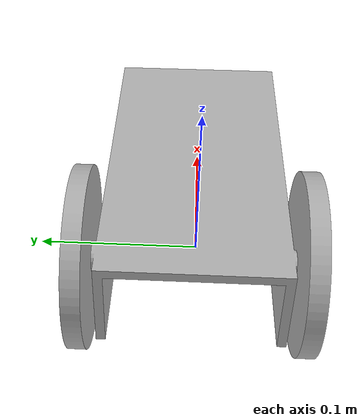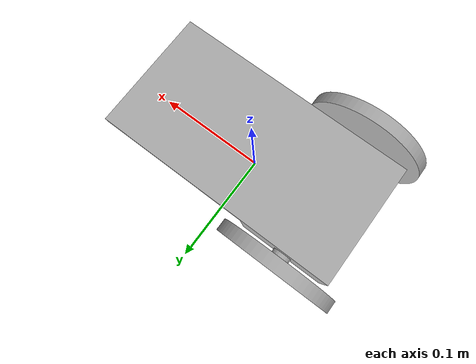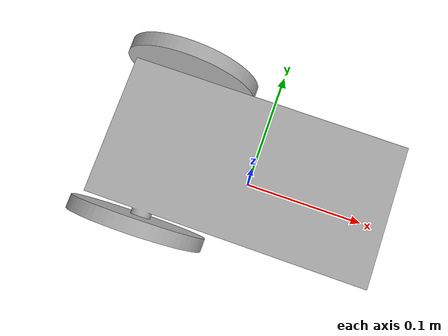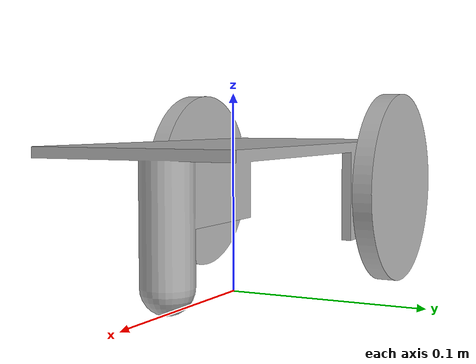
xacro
<?xml version="1.0" ?>
<robot name="nannanananan" xmlns:xacro="http://www.ros.org/wiki/xacro">

<xacro:include filename="$(find nannanananan_description)/urdf/materials.xacro" />
<xacro:include filename="$(find nannanananan_description)/urdf/nannanananan.trans" />
<xacro:include filename="$(find nannanananan_description)/urdf/nannanananan.gazebo" />
<link name="base_link">
  <inertial>
    <origin xyz="-0.0013982302040001131 0.015379758904105754 0.06641919349562576" rpy="0 0 0"/>
    <mass value="1.317489111222947"/>
    <inertia ixx="0.001739" iyy="0.005522" izz="0.006384" ixy="0.0" iyz="0.0" ixz="0.000193"/>
  </inertial>
  <visual>
    <origin xyz="0 0 0" rpy="0 0 0"/>
    <geometry>
      <mesh filename="package://nannanananan_description/meshes/base_link.stl" scale="0.001 0.001 0.001"/>
    </geometry>
    <material name="silver"/>
  </visual>
  <collision>
    <origin xyz="0 0 0" rpy="0 0 0"/>
    <geometry>
      <mesh filename="package://nannanananan_description/meshes/base_link.stl" scale="0.001 0.001 0.001"/>
    </geometry>
  </collision>
</link>

<link name="whell_2_1">
  <inertial>
    <origin xyz="3.340457739031688e-07 0.004999758904105908 8.432927334905971e-08" rpy="0 0 0"/>
    <mass value="0.6165375582669965"/>
    <inertia ixx="0.00039" iyy="0.000771" izz="0.00039" ixy="-0.0" iyz="-0.0" ixz="-0.0"/>
  </inertial>
  <visual>
    <origin xyz="0.064858 -0.07038 -0.056191" rpy="0 0 0"/>
    <geometry>
      <mesh filename="package://nannanananan_description/meshes/whell_2_1.stl" scale="0.001 0.001 0.001"/>
    </geometry>
    <material name="silver"/>
  </visual>
  <collision>
    <origin xyz="0.064858 -0.07038 -0.056191" rpy="0 0 0"/>
    <geometry>
      <mesh filename="package://nannanananan_description/meshes/whell_2_1.stl" scale="0.001 0.001 0.001"/>
    </geometry>
  </collision>
</link>

<link name="whell_1">
  <inertial>
    <origin xyz="3.340457746803249e-07 -0.005000241095894663 8.432927341844865e-08" rpy="0 0 0"/>
    <mass value="0.6165375582669967"/>
    <inertia ixx="0.00039" iyy="0.000771" izz="0.00039" ixy="-0.0" iyz="0.0" ixz="-0.0"/>
  </inertial>
  <visual>
    <origin xyz="0.064858 0.03962 -0.056191" rpy="0 0 0"/>
    <geometry>
      <mesh filename="package://nannanananan_description/meshes/whell_1.stl" scale="0.001 0.001 0.001"/>
    </geometry>
    <material name="silver"/>
  </visual>
  <collision>
    <origin xyz="0.064858 0.03962 -0.056191" rpy="0 0 0"/>
    <geometry>
      <mesh filename="package://nannanananan_description/meshes/whell_1.stl" scale="0.001 0.001 0.001"/>
    </geometry>
  </collision>
</link>

<joint name="Rev1" type="continuous">
  <origin xyz="-0.064858 0.07038 0.056191" rpy="0 0 0"/>
  <parent link="base_link"/>
  <child link="whell_2_1"/>
  <axis xyz="0.0 1.0 0.0"/>
</joint>

<joint name="Rev2" type="continuous">
  <origin xyz="-0.064858 -0.03962 0.056191" rpy="0 0 0"/>
  <parent link="base_link"/>
  <child link="whell_1"/>
  <axis xyz="0.0 1.0 0.0"/>
</joint>

</robot>

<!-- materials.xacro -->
<robot name="nannanananan" xmlns:xacro="http://www.ros.org/wiki/xacro" >

<material name="silver">
  <color rgba="0.700 0.700 0.700 1.000"/>
</material>

</robot>

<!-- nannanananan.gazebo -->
<robot name="nannanananan" xmlns:xacro="http://www.ros.org/wiki/xacro" >

<xacro:property name="body_color" value="Gazebo/Silver" />

<gazebo>
  <plugin name="control" filename="libgazebo_ros_control.so"/>
</gazebo>
<gazebo reference="base_link">
  <material>${body_color}</material>
  <mu1>3500</mu1>
  <mu2>3500</mu2>
  <selfCollide>true</selfCollide>
  <gravity>true</gravity>
</gazebo>

<gazebo reference="whell_2_1">
  <material>${body_color}</material>
  <mu1>3500</mu1>
  <mu2>3500</mu2>
  <selfCollide>true</selfCollide>
</gazebo>

<gazebo reference="whell_1">
  <material>${body_color}</material>
  <mu1>o.2</mu1>
  <mu2>0.2</mu2>
  <selfCollide>true</selfCollide>
</gazebo>
  <gazebo>
  <plugin name="differential_drive_controller" filename="libgazebo_ros_diff_drive.so">

    <!-- Plugin update rate in Hz -->
    <updateRate>${1000}</updateRate>

    <!-- Name of left joint, defaults to `left_joint` -->
    <leftJoint>Rev1</leftJoint>

    <!-- Name of right joint, defaults to `right_joint` -->
    <rightJoint>Rev2</rightJoint>

    <!-- The distance from the center of one wheel to the other, in meters, defaults to 0.34 m -->
    <wheelSeparation>0.5380</wheelSeparation>

    <!-- Diameter of the wheels, in meters, defaults to 0.15 m -->
    <wheelDiameter>0.2410</wheelDiameter>

    <!-- Wheel acceleration, in rad/s^2, defaults to 0.0 rad/s^2 -->
    <wheelAcceleration>1.0</wheelAcceleration>

    <!-- Maximum torque which the wheels can produce, in Nm, defaults to 5 Nm -->
    <wheelTorque>20</wheelTorque>

    <!-- Topic to receive geometry_msgs/Twist message commands, defaults to `cmd_vel` -->
    <commandTopic>cmd_vel</commandTopic>

    <!-- Topic to publish nav_msgs/Odometry messages, defaults to `odom` -->
    <odometryTopic>odom</odometryTopic>

    <!-- Odometry frame, defaults to `odom` -->
    <odometryFrame>odom</odometryFrame>

    <!-- Robot frame to calculate odometry from, defaults to `base_footprint` -->
    <robotBaseFrame>base_link</robotBaseFrame>

    <!-- Odometry source, 0 for ENCODER, 1 for WORLD, defaults to WORLD -->
    <odometrySource>1</odometrySource>

    <!-- Set to true to publish transforms for the wheel links, defaults to false -->
    <publishWheelTF>true</publishWheelTF>

    <!-- Set to true to publish transforms for the odometry, defaults to true -->
    <publishOdom>true</publishOdom>

    <!-- Set to true to publish sensor_msgs/JointState on /joint_states for the wheel joints, defaults to false -->
    <publishWheelJointState>true</publishWheelJointState>

    <!-- Set to true to swap right and left wheels, defaults to true -->
    <legacyMode>false</legacyMode>
  </plugin>
</gazebo>

</robot>
